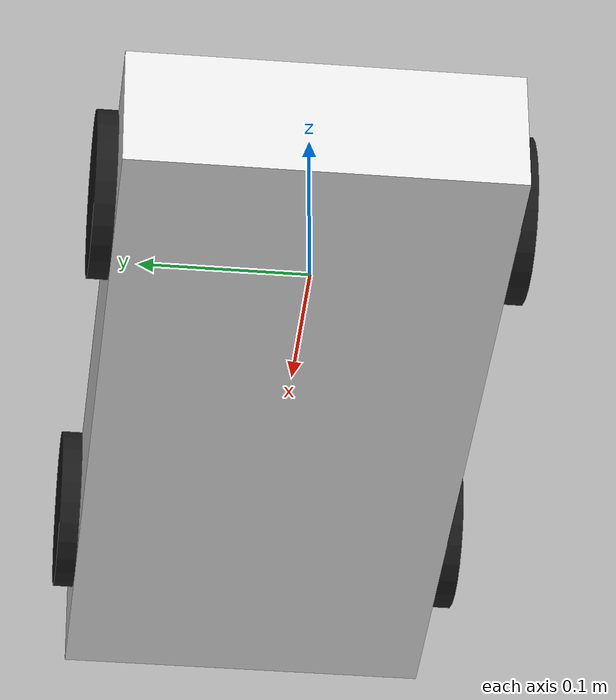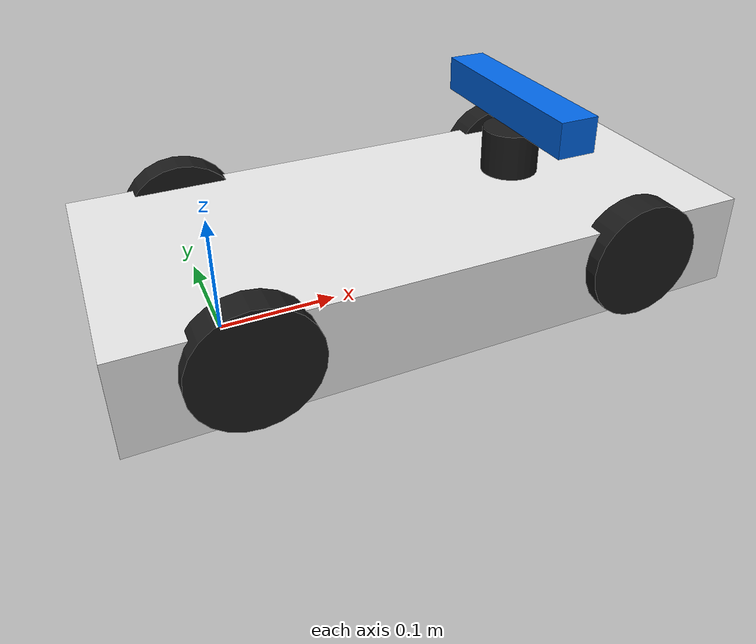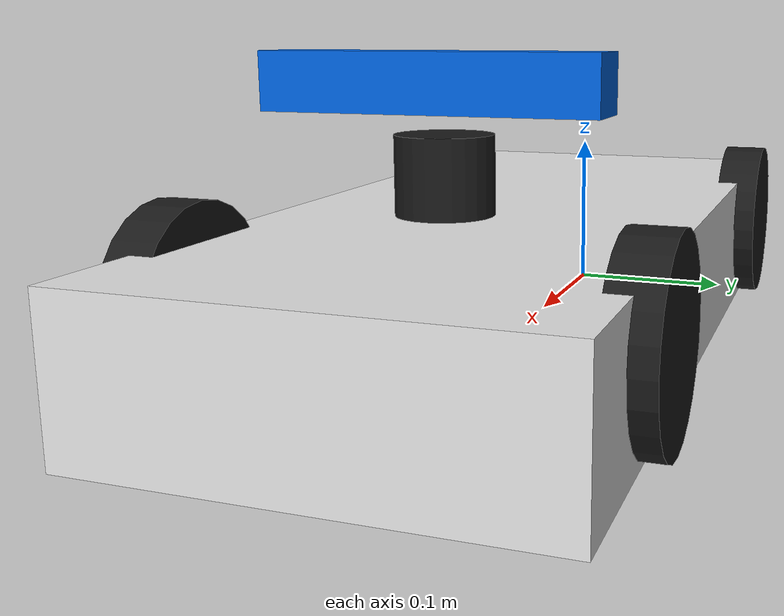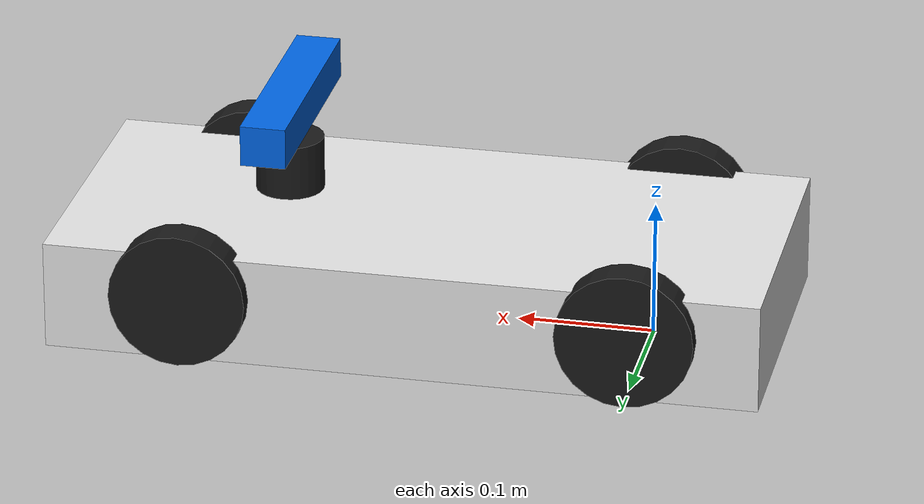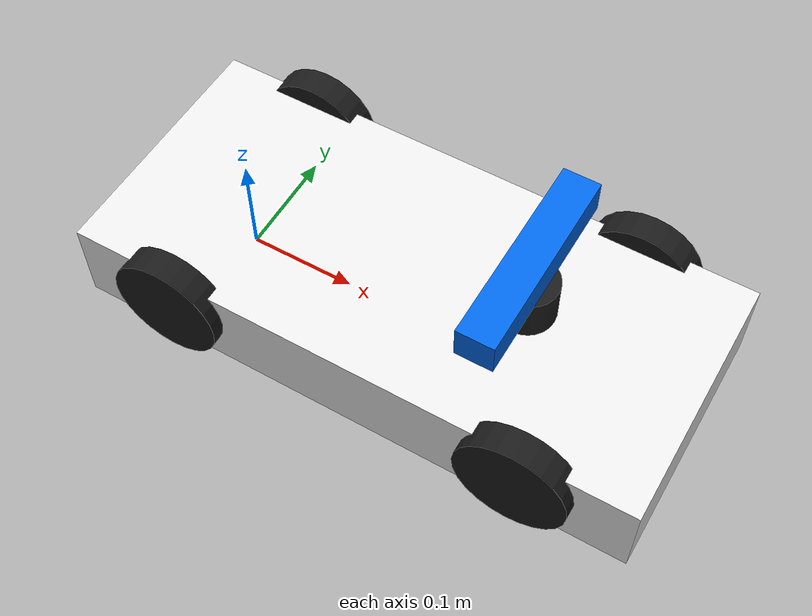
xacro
<?xml version="1.0"?>
<robot name="roboracer" xmlns:xacro="http://www.ros.org/wiki/xacro">

  <!-- ── Materials ──────────────────────────────────────────────────── -->
  <material name="white">  <color rgba="0.9 0.9 0.9 1.0"/> </material>
  <material name="black">  <color rgba="0.1 0.1 0.1 1.0"/> </material>
  <material name="blue">   <color rgba="0.0 0.4 0.9 1.0"/> </material>
  <material name="grey">   <color rgba="0.5 0.5 0.5 1.0"/> </material>

  <!-- ── Inertia macros ─────────────────────────────────────────────── -->
  <xacro:macro name="box_inertia" params="m x y z">
    <inertial>
      <mass value="${m}"/>
      <inertia ixx="${m*(y*y+z*z)/12}" ixy="0" ixz="0"
               iyy="${m*(x*x+z*z)/12}" iyz="0"
               izz="${m*(x*x+y*y)/12}"/>
    </inertial>
  </xacro:macro>

  <xacro:macro name="cylinder_inertia" params="m r h">
    <inertial>
      <mass value="${m}"/>
      <inertia ixx="${m*(3*r*r+h*h)/12}" ixy="0" ixz="0"
               iyy="${m*(3*r*r+h*h)/12}" iyz="0"
               izz="${m*r*r/2}"/>
    </inertial>
  </xacro:macro>

  <!-- ── Chassis (base_link = rear axle) ──────────────────────────── -->
  <!-- Chassis box is 520 mm long. Geometric centre is 165 mm ahead of rear axle,
       so the visual is offset +0.165 m in x from base_link. -->
  <link name="base_link">
    <visual>
      <origin xyz="0.165 0 0.04" rpy="0 0 0"/>
      <geometry><box size="0.520 0.232 0.08"/></geometry>
      <material name="white"/>
    </visual>
    <collision>
      <origin xyz="0.165 0 0.04" rpy="0 0 0"/>
      <geometry><box size="0.520 0.232 0.08"/></geometry>
    </collision>
    <xacro:box_inertia m="3.0" x="0.520" y="0.232" z="0.08"/>
  </link>

  <!-- ── Wheel macro ────────────────────────────────────────────────── -->
  <!--  radius=0.05 m, width=0.025 m, rotated 90° so axis is along Y   -->
  <xacro:macro name="wheel" params="name x y">
    <link name="${name}">
      <visual>
        <origin xyz="0 0 0" rpy="${pi/2} 0 0"/>
        <geometry><cylinder radius="0.05" length="0.025"/></geometry>
        <material name="black"/>
      </visual>
      <collision>
        <origin xyz="0 0 0" rpy="${pi/2} 0 0"/>
        <geometry><cylinder radius="0.05" length="0.025"/></geometry>
      </collision>
      <xacro:cylinder_inertia m="0.15" r="0.05" h="0.025"/>
    </link>
    <joint name="${name}_joint" type="continuous">
      <parent link="base_link"/>
      <child  link="${name}"/>
      <origin xyz="${x} ${y} 0.05" rpy="0 0 0"/>
      <axis xyz="0 1 0"/>
      <dynamics damping="0.1" friction="0.1"/>
    </joint>
  </xacro:macro>

  <!-- Rear drive wheels  (x = 0.000 m — rear axle IS base_link) -->
  <xacro:wheel name="rear_left_wheel"  x="0.000"  y=" 0.116"/>
  <xacro:wheel name="rear_right_wheel" x="0.000"  y="-0.116"/>

  <!-- Front caster wheels (x = +0.324 m — wheelbase) -->
  <xacro:wheel name="front_left_wheel"  x=" 0.324"  y=" 0.116"/>
  <xacro:wheel name="front_right_wheel" x=" 0.324"  y="-0.116"/>

  <!-- ── Axle frames (for Estimation/Control teammates) ─────────────── -->
  <link name="rear_axle"/>
  <joint name="rear_axle_joint" type="fixed">
    <parent link="base_link"/>
    <child  link="rear_axle"/>
    <origin xyz="0.000 0.0 0.0" rpy="0 0 0"/>
  </joint>

  <link name="front_axle"/>
  <joint name="front_axle_joint" type="fixed">
    <parent link="base_link"/>
    <child  link="front_axle"/>
    <origin xyz="0.324 0.0 0.0" rpy="0 0 0"/>
  </joint>

  <!-- ── LiDAR (HOKUYO UST-10LX) ───────────────────────────────────── -->
  <link name="laser">
    <visual>
      <geometry><cylinder radius="0.025" length="0.04"/></geometry>
      <material name="black"/>
    </visual>
    <collision>
      <geometry><cylinder radius="0.025" length="0.04"/></geometry>
    </collision>
    <xacro:cylinder_inertia m="0.1" r="0.025" h="0.04"/>
  </link>
  <joint name="laser_joint" type="fixed">
    <parent link="base_link"/>
    <child  link="laser"/>
    <origin xyz="0.270 0.0 0.110" rpy="0 0 0"/>
  </joint>

  <!-- Gazebo ray sensor — UST-10LX specs: 1081 rays, 270° FOV, 40 Hz -->
  <gazebo reference="laser">
    <sensor name="hokuyo_lidar" type="ray">
      <always_on>true</always_on>
      <update_rate>40</update_rate>
      <visualize>false</visualize>
      <ray>
        <scan>
          <horizontal>
            <samples>1081</samples>
            <resolution>1</resolution>
            <min_angle>-2.35619449</min_angle>
            <max_angle> 2.35619449</max_angle>
          </horizontal>
        </scan>
        <range>
          <min>0.06</min>
          <max>8.0</max>
          <resolution>0.001</resolution>
        </range>
        <noise>
          <type>gaussian</type>
          <mean>0.0</mean>
          <stddev>0.005</stddev>
        </noise>
      </ray>
      <plugin name="lidar_plugin" filename="libgazebo_ros_ray_sensor.so">
        <ros>
          <remapping>~/out:=/scan</remapping>
        </ros>
        <output_type>sensor_msgs/LaserScan</output_type>
        <frame_name>laser</frame_name>
      </plugin>
    </sensor>
  </gazebo>

  <!-- ── ZED 2i Camera ──────────────────────────────────────────────── -->
  <link name="zed_camera_link">
    <visual>
      <geometry><box size="0.033 0.175 0.030"/></geometry>
      <material name="blue"/>
    </visual>
    <collision>
      <geometry><box size="0.033 0.175 0.030"/></geometry>
    </collision>
    <xacro:box_inertia m="0.17" x="0.033" y="0.175" z="0.030"/>
  </link>
  <joint name="zed_joint" type="fixed">
    <parent link="base_link"/>
    <child  link="zed_camera_link"/>
    <origin xyz="0.270 -0.005 0.155" rpy="0 0 0"/>
  </joint>

  <!-- Camera optical frame: rotate camera frame → ROS optical convention -->
  <!-- (x=right, y=down, z=forward in optical vs x=forward, y=left, z=up in body) -->
  <link name="zed_camera_optical_frame"/>
  <joint name="zed_optical_joint" type="fixed">
    <parent link="zed_camera_link"/>
    <child  link="zed_camera_optical_frame"/>
    <origin xyz="0 0 0" rpy="${-pi/2} 0 ${-pi/2}"/>
  </joint>

  <gazebo reference="zed_camera_link">
    <sensor name="zed_depth_camera" type="depth">
      <always_on>true</always_on>
      <update_rate>15</update_rate>
      <visualize>false</visualize>
      <camera name="zed_depth_camera">
        <horizontal_fov>1.9199</horizontal_fov>
        <image>
          <width>640</width>
          <height>360</height>
          <format>R8G8B8</format>
        </image>
        <clip>
          <near>0.2</near>
          <far>20.0</far>
        </clip>
        <noise>
          <type>gaussian</type>
          <mean>0.0</mean>
          <stddev>0.003</stddev>
        </noise>
      </camera>
      <plugin name="zed_camera_plugin" filename="libgazebo_ros_camera.so">
        <ros>
          <!-- Publish into /zed/zed_node/ namespace, remapping to ZED SDK topic names -->
          <namespace>/zed/zed_node</namespace>
          <remapping>zed_depth_camera/image_raw:=rgb/image_rect_color</remapping>
          <remapping>zed_depth_camera/depth/image_raw:=depth/depth_registered</remapping>
          <remapping>zed_depth_camera/camera_info:=rgb/camera_info</remapping>
          <remapping>zed_depth_camera/points:=point_cloud/cloud_registered</remapping>
        </ros>
        <camera_name>zed_depth_camera</camera_name>
        <frame_name>zed_camera_optical_frame</frame_name>
        <hack_baseline>0.12</hack_baseline>
      </plugin>
    </sensor>
  </gazebo>

  <!-- ── Differential drive plugin ─────────────────────────────────── -->
  <!-- Subscribes to /cmd_vel (Twist). An ackermann_to_twist node      -->
  <!-- converts /ego_racecar/drive → /cmd_vel for teleop compatibility. -->
  <gazebo>
    <plugin name="diff_drive" filename="libgazebo_ros_diff_drive.so">
      <ros>
        <remapping>cmd_vel:=/cmd_vel</remapping>
        <remapping>odom:=/ego_racecar/odom</remapping>
      </ros>
      <left_joint>rear_left_wheel_joint</left_joint>
      <right_joint>rear_right_wheel_joint</right_joint>
      <wheel_separation>0.232</wheel_separation>
      <wheel_diameter>0.10</wheel_diameter>
      <max_wheel_torque>5.0</max_wheel_torque>
      <max_wheel_acceleration>2.0</max_wheel_acceleration>
      <publish_odom>true</publish_odom>
      <publish_odom_tf>true</publish_odom_tf>
      <publish_wheel_tf>false</publish_wheel_tf>
      <odometry_frame>odom</odometry_frame>
      <robot_base_frame>base_link</robot_base_frame>
    </plugin>
  </gazebo>

  <!-- ── Chassis material / friction ───────────────────────────────── -->
  <gazebo reference="base_link">
    <material>Gazebo/White</material>
    <mu1>0.3</mu1>
    <mu2>0.3</mu2>
  </gazebo>
  <gazebo reference="rear_left_wheel">
    <material>Gazebo/Black</material>
    <mu1>2.0</mu1>
    <mu2>2.0</mu2>
  </gazebo>
  <gazebo reference="rear_right_wheel">
    <material>Gazebo/Black</material>
    <mu1>2.0</mu1>
    <mu2>2.0</mu2>
  </gazebo>
  <gazebo reference="front_left_wheel">
    <material>Gazebo/Black</material>
    <mu1>0.5</mu1>
    <mu2>0.5</mu2>
  </gazebo>
  <gazebo reference="front_right_wheel">
    <material>Gazebo/Black</material>
    <mu1>0.5</mu1>
    <mu2>0.5</mu2>
  </gazebo>

</robot>
